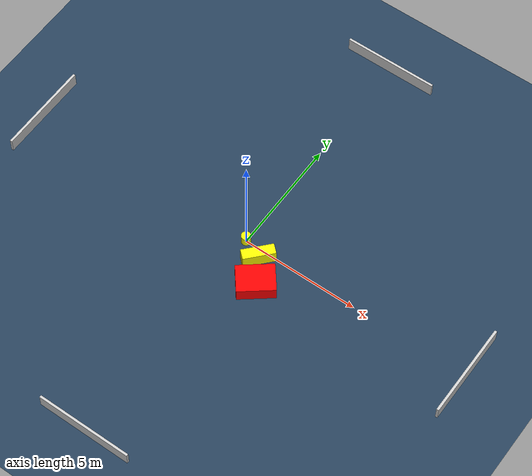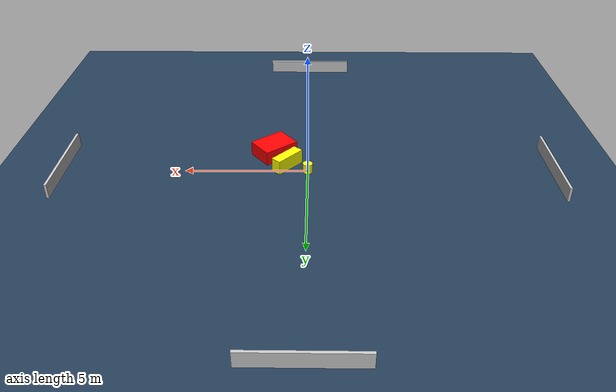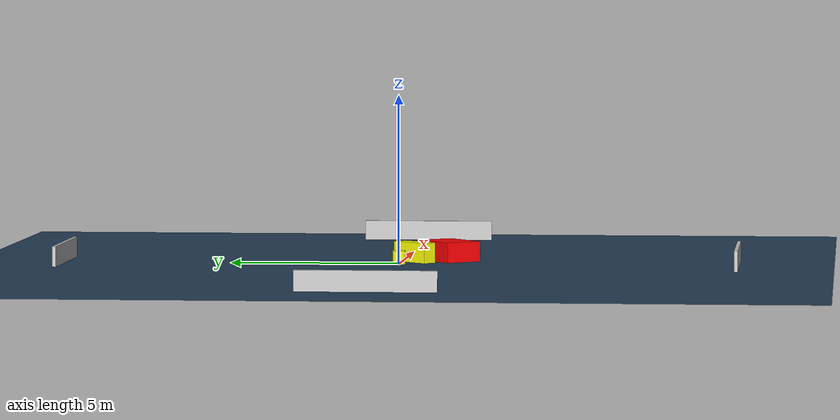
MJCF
<?xml version="1.0" ?>
<mujoco model="generated_environment">
  <option timestep="0.01" integrator="RK4" cone="elliptic"/>
  <default>
    <geom density="1"/>
  </default>
  <asset>
    <texture builtin="gradient" height="3072" name="skybox" rgb1="0.3 0.5 0.7" rgb2="0 0 0" type="skybox" width="512"/>
    <texture builtin="checker" height="300" name="groundplane" rgb1="0.2 0.3 0.4" rgb2="0.1 0.2 0.3" type="2d" width="300"/>
    <material name="groundplane" reflectance="0.2" texrepeat="5 5" texture="groundplane"/>
  </asset>
  <worldbody>
    <light dir="0 0 -1" directional="true" pos="0 0 1.5"/>
    <geom condim="3" friction="0.5 0.005 0.001" material="groundplane" name="floor" pos="0 0 0" size="0 0 0.05" type="plane"/>
    <body name="walls">
      <geom name="wall_1" condim="4" pos="-10.0 0.0 0.3" rgba="0.800000011920929 0.800000011920929 0.800000011920929 1.0" size="0.05 2.0 0.3" type="box"/>
      <geom name="wall_2" condim="4" pos="10.0 0.0 0.3" rgba="0.800000011920929 0.800000011920929 0.800000011920929 1.0" size="0.05 2.0 0.3" type="box"/>
      <geom name="wall_3" condim="4" pos="0.0 -10.0 0.3" rgba="0.800000011920929 0.800000011920929 0.800000011920929 1.0" size="2.0 0.05 0.3" type="box"/>
      <geom name="wall_4" condim="4" pos="0.0 10.0 0.3" rgba="0.800000011920929 0.800000011920929 0.800000011920929 1.0" size="2.0 0.05 0.3" type="box"/>
    </body>
    <body name="robot">
      <joint name="joint_x" type="slide" pos="0 0 0" axis="1 0 0"/>
      <joint name="joint_y" type="slide" pos="0 0 0" axis="0 1 0"/>
      <geom name="robot" type="cylinder" pos="0.0 0.0 0.2" size="0.2 0.2 0.0" mass="5.0" friction="1.0 0.005 0.0001" condim="4" rgba="1.0 1.0 0.0 1.0"/>
    </body>
    <body name="obstacle_1_movable">
      <geom name="obstacle_1_movable" condim="4" pos="0.8521997290782239 -0.38637535878705076 0.3" euler="0 0 47.83763096569513" friction="0.0 0.005 0.001" rgba="1.0 1.0 0.0 1.0" size="0.6606788005365646 0.22008396836776312 0.3" type="box" mass="0.1"/>
      <joint type="free"/>
    </body>
    <body name="obstacle_2_static">
      <geom name="obstacle_2_static" condim="4" pos="1.4416597390316699 -1.3795894547036802 0.3" euler="0 0 38.33949790665092" friction="0.0 0.005 0.001" rgba="1.0 0.0 0.0 1.0" size="0.7701213824353299 0.5806310796036664 0.3" type="box"/>
    </body>
  </worldbody>
  <actuator>
    <motor name="actuator_x" joint="joint_x" gear="1" ctrlrange="-1 1"/>
    <motor name="actuator_y" joint="joint_y" gear="1" ctrlrange="-1 1"/>
  </actuator>
</mujoco>
